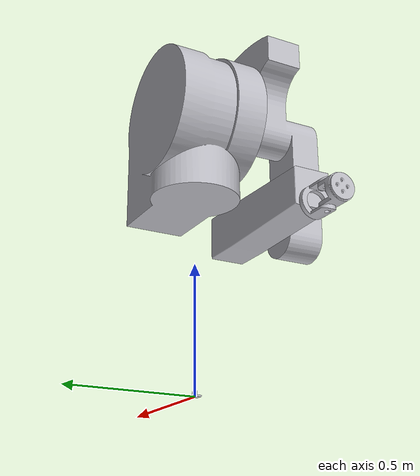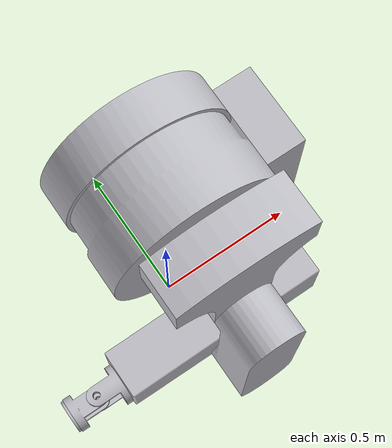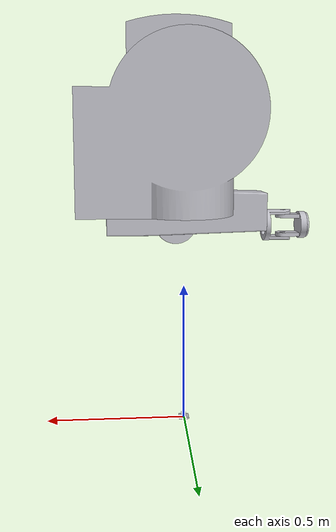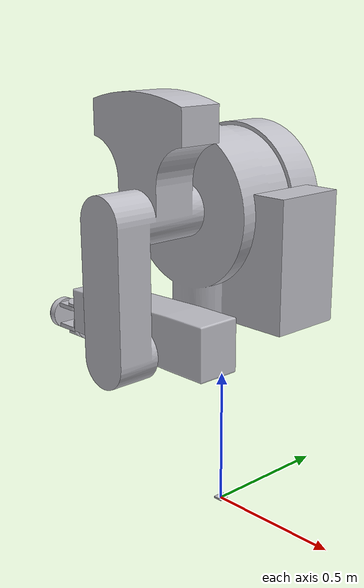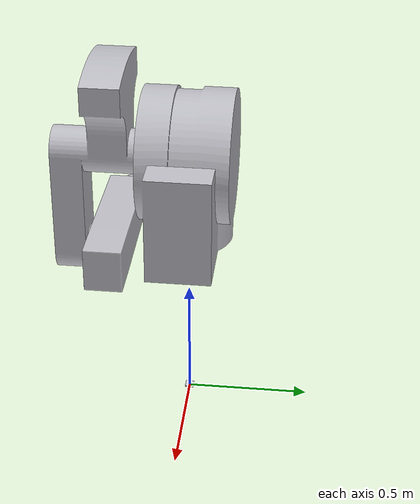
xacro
<?xml version="1.0"?>
<robot name="merlin" xmlns:xacro="http://www.ros.org/wiki/xacro">

  <xacro:include filename="$(find merlin_description)/urdf/materials.xacro" />
  <xacro:include filename="$(find merlin_description)/urdf/merlin.trans.xacro" />
  <xacro:include filename="$(find merlin_description)/urdf/merlin.gazebo.xacro" />
  <link name="world_link"></link>
  <link name="base_link">
    <inertial>
      <origin rpy="0 0 0" xyz="-5.307067970072318e-17 0.011280305091993278 0.17566675028184617" />
      <mass value="1377.5746329157873" />
      <inertia ixx="129.080457" ixy="-0.0" ixz="-0.0" iyy="126.261878" iyz="-4.078849" izz="151.45766" />
    </inertial>
    <visual>
      <origin rpy="0 0 0" xyz="0 0 0" />
      <geometry>
        <mesh filename="package://merlin_description/meshes/base_link.stl" scale="0.001 0.001 0.001" />
      </geometry>
      <material name="silver" />
    </visual>
    <collision>
      <origin rpy="0 0 0" xyz="0 0 0" />
      <geometry>
        <mesh filename="package://merlin_description/meshes/base_link.stl" scale="0.001 0.001 0.001" />
      </geometry>
    </collision>
  </link>

  <link name="Waist_1">
    <inertial>
      <origin rpy="0 0 0" xyz="0.049382820138855435 -1.339727353549568e-09 0.2971243460783748" />
      <mass value="812.9704335382083" />
      <inertia ixx="28.634617" ixy="-1e-06" ixz="4.185208" iyy="41.522955" iyz="-0.0" izz="28.378178" />
    </inertial>
    <visual>
      <origin rpy="0 0 0" xyz="-0.0 -0.0 -0.822325" />
      <geometry>
        <mesh filename="package://merlin_description/meshes/Waist_1.stl" scale="0.001 0.001 0.001" />
      </geometry>
      <material name="silver" />
    </visual>
    <collision>
      <origin rpy="0 0 0" xyz="-0.0 -0.0 -0.822325" />
      <geometry>
        <mesh filename="package://merlin_description/meshes/Waist_1.stl" scale="0.001 0.001 0.001" />
      </geometry>
    </collision>
  </link>

  <link name="Shoulder_1">
    <inertial>
      <origin rpy="0 0 0" xyz="-1.0466970051982582e-16 -0.19144610574590126 0.008004317446370424" />
      <mass value="261.92688193514255" />
      <inertia ixx="18.724068" ixy="-0.0" ixz="-0.0" iyy="17.838364" iyz="-4.08305" izz="3.735585" />
    </inertial>
    <visual>
      <origin rpy="0 0 0" xyz="0.0 0.1778 -1.180232" />
      <geometry>
        <mesh filename="package://merlin_description/meshes/Shoulder_1.stl" scale="0.001 0.001 0.001" />
      </geometry>
      <material name="silver" />
    </visual>
    <collision>
      <origin rpy="0 0 0" xyz="0.0 0.1778 -1.180232" />
      <geometry>
        <mesh filename="package://merlin_description/meshes/Shoulder_1.stl" scale="0.001 0.001 0.001" />
      </geometry>
    </collision>
  </link>

  <link name="Lower_Head_1">
    <inertial>
      <origin rpy="0 0 0" xyz="-0.0361571748667579 3.3306690738754696e-15 -1.364503260381511e-07" />
      <mass value="2.2131276746402775" />
      <inertia ixx="0.0067" ixy="-0.0" ixz="0.0" iyy="0.007083" iyz="0.0" izz="0.004151" />
    </inertial>
    <visual>
      <origin rpy="0 0 0" xyz="0.3556 0.3048 -0.73878" />
      <geometry>
        <mesh filename="package://merlin_description/meshes/Lower_Head_1.stl" scale="0.001 0.001 0.001" />
      </geometry>
      <material name="silver" />
    </visual>
    <collision>
      <origin rpy="0 0 0" xyz="0.3556 0.3048 -0.73878" />
      <geometry>
        <mesh filename="package://merlin_description/meshes/Lower_Head_1.stl" scale="0.001 0.001 0.001" />
      </geometry>
    </collision>
  </link>

  <link name="Upper_Head_1">
    <inertial>
      <origin rpy="0 0 0" xyz="-0.05560621831749479 3.885780586188048e-16 0.04584586354968023" />
      <mass value="3.012798664762447" />
      <inertia ixx="0.004849" ixy="0.0" ixz="-0.0" iyy="0.006079" iyz="-0.0" izz="0.004733" />
    </inertial>
    <visual>
      <origin rpy="0 0 0" xyz="0.437896 0.3048 -0.692934" />
      <geometry>
        <mesh filename="package://merlin_description/meshes/Upper_Head_1.stl" scale="0.001 0.001 0.001" />
      </geometry>
      <material name="silver" />
    </visual>
    <collision>
      <origin rpy="0 0 0" xyz="0.437896 0.3048 -0.692934" />
      <geometry>
        <mesh filename="package://merlin_description/meshes/Upper_Head_1.stl" scale="0.001 0.001 0.001" />
      </geometry>
    </collision>
  </link>

  <link name="Face_Plate_1">
    <inertial>
      <origin rpy="0 0 0" xyz="-0.003937912465997173 1.1102230246251565e-16 -1.3645034124820654e-07" />
      <mass value="0.47960575442808745" />
      <inertia ixx="0.000647" ixy="0.0" ixz="0.0" iyy="0.000326" iyz="0.0" izz="0.000326" />
    </inertial>
    <visual>
      <origin rpy="0 0 0" xyz="0.526796 0.3048 -0.73878" />
      <geometry>
        <mesh filename="package://merlin_description/meshes/Face_Plate_1.stl" scale="0.001 0.001 0.001" />
      </geometry>
      <material name="silver" />
    </visual>
    <collision>
      <origin rpy="0 0 0" xyz="0.526796 0.3048 -0.73878" />
      <geometry>
        <mesh filename="package://merlin_description/meshes/Face_Plate_1.stl" scale="0.001 0.001 0.001" />
      </geometry>
    </collision>
  </link>

  <link name="Elbow_1">
    <inertial>
      <origin rpy="0 0 0" xyz="-0.02407131115548833 0.07619999999999999 -1.3645031959885756e-07" />
      <mass value="131.17438239048553" />
      <inertia ixx="0.57509" ixy="-0.0" ixz="0.0" iyy="4.777681" iyz="-0.0" izz="4.709359" />
    </inertial>
    <visual>
      <origin rpy="0 0 0" xyz="-0.0 0.381 -0.73878" />
      <geometry>
        <mesh filename="package://merlin_description/meshes/Elbow_1.stl" scale="0.001 0.001 0.001" />
      </geometry>
      <material name="silver" />
    </visual>
    <collision>
      <origin rpy="0 0 0" xyz="-0.0 0.381 -0.73878" />
      <geometry>
        <mesh filename="package://merlin_description/meshes/Elbow_1.stl" scale="0.001 0.001 0.001" />
      </geometry>
    </collision>
  </link>

  <joint name="waist" type="revolute">
    <origin rpy="0 0 0" xyz="0.0 0.0 0.822325" />
    <parent link="base_link" />
    <child link="Waist_1" />
    <axis xyz="0.0 0.0 -1.0" />
    <limit effort="100" lower="-4.537856" upper="0.523599" velocity="100" />
  </joint>

  <joint name="shoulder" type="continuous">
    <origin rpy="0 0 0" xyz="-0.0 -0.1778 0.357907" />
    <parent link="Waist_1" />
    <child link="Shoulder_1" />
    <axis xyz="0.0 -1.0 0.0" />
  </joint>

  <joint name="wrist_rotation" type="continuous">
    <origin rpy="0 0 0" xyz="-0.3556 0.0762 0.0" />
    <parent link="Elbow_1" />
    <child link="Lower_Head_1" />
    <axis xyz="-1.0 0.0 -0.0" />
  </joint>

  <joint name="wrist_flex" type="revolute">
    <origin rpy="0 0 0" xyz="-0.082296 0.0 -0.045846" />
    <parent link="Lower_Head_1" />
    <child link="Upper_Head_1" />
    <axis xyz="-0.0 0.0 -1.0" />
    <limit effort="100" lower="-1.570796" upper="1.570796" velocity="100" />
  </joint>

  <joint name="hand_roll" type="continuous">
    <origin rpy="0 0 0" xyz="-0.0889 0.0 0.045846" />
    <parent link="Upper_Head_1" />
    <child link="Face_Plate_1" />
    <axis xyz="1.0 0.0 0.0" />
  </joint>

  <joint name="elbow" type="continuous">
    <origin rpy="0 0 0" xyz="0.0 -0.2032 -0.441452" />
    <parent link="Shoulder_1" />
    <child link="Elbow_1" />
    <axis xyz="0.0 -1.0 0.0" />
  </joint>

  <joint name="world" type="fixed">
    <parent link="world_link" />
    <child link="base_link" />
  </joint>

</robot>
